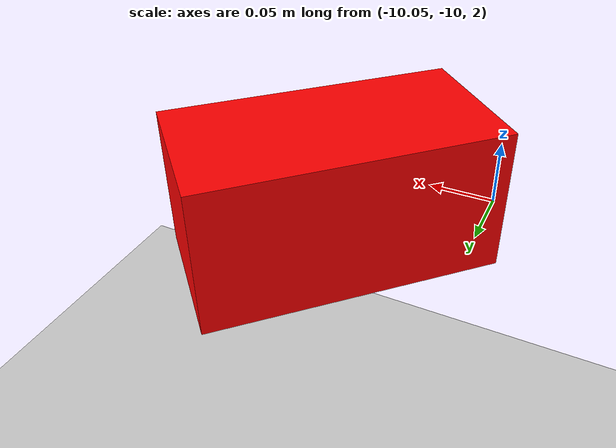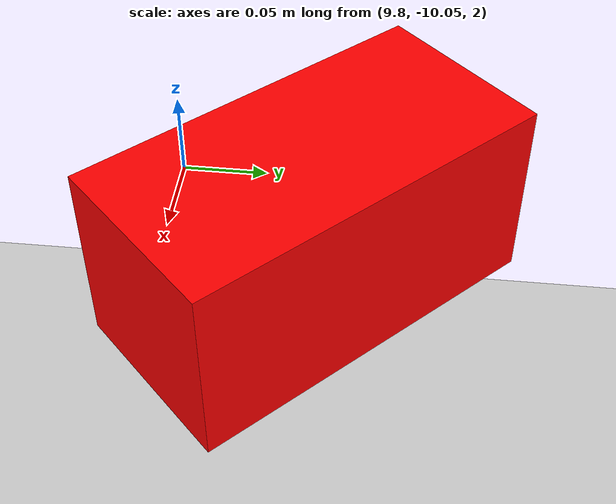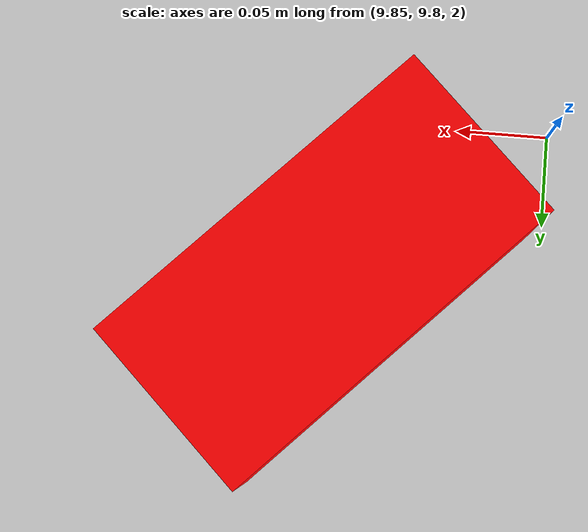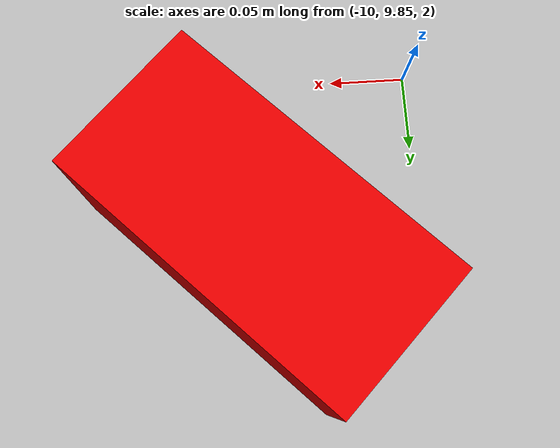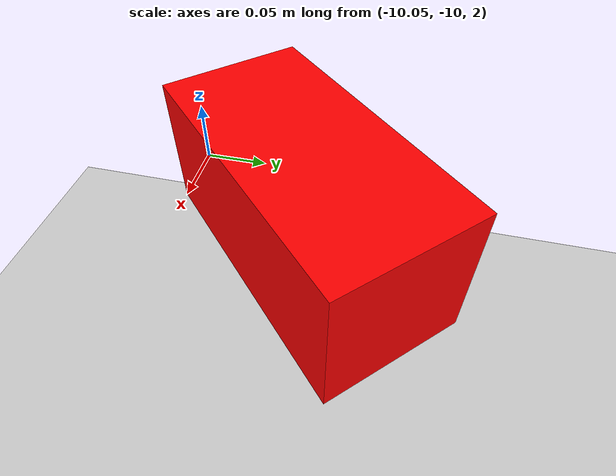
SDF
<sdf version="1.9">
 <world name="PurdueMini">
  <physics type="ode">
   <max_step_size>0.004</max_step_size>
   <real_time_factor>1.0</real_time_factor>
   <real_time_update_rate>250</real_time_update_rate>
  </physics>
  <plugin name="gz::sim::systems::Physics" filename="gz-sim-physics-system"/>
  <plugin name="gz::sim::systems::UserCommands" filename="gz-sim-user-commands-system"/>
  <plugin name="gz::sim::systems::SceneBroadcaster" filename="gz-sim-scene-broadcaster-system"/>
  <plugin name="gz::sim::systems::Contact" filename="gz-sim-contact-system"/>
  <plugin name="gz::sim::systems::Imu" filename="gz-sim-imu-system"/>
  <plugin name="gz::sim::systems::AirPressure" filename="gz-sim-air-pressure-system"/>
  <plugin name="gz::sim::systems::ApplyLinkWrench" filename="gz-sim-apply-link-wrench-system"/>
  <plugin name="gz::sim::systems::Sensors" filename="gz-sim-sensors-system">
   <render_engine>ogre2</render_engine>
  </plugin>
  <gravity>0 0 -9.8</gravity>
  <magnetic_field>6e-06 2.3e-05 -4.2e-05</magnetic_field>
  <atmosphere type="adiabatic"/>
  <scene>
   <ambient>0.4 0.4 0.4 1</ambient>
   <background>0.7 0.7 0.7 1</background>
   <shadows>true</shadows>
   <grid>true</grid>
  </scene>
  <spherical_coordinates>
   <surface_model>EARTH_WGS84</surface_model>
   <world_frame_orientation>ENU</world_frame_orientation>
   <latitude_deg>24.484043629238872</latitude_deg>
   <longitude_deg>54.36068616768677</longitude_deg>
   <elevation>10</elevation>
   <heading_deg>0</heading_deg>
  </spherical_coordinates>
  <light name="sunUTC" type="directional">
   <pose>0 0 500 0 -0 0</pose>
   <cast_shadows>false</cast_shadows>
   <intensity>2</intensity>
   <direction>0 0 0</direction>
   <diffuse>0.904 0.904 0.904 1</diffuse>
   <specular>0.271 0.271 0.271 1</specular>
   <attenuation><range>1000</range><linear>0</linear><constant>1</constant><quadratic>0</quadratic></attenuation>
   <spot><inner_angle>0</inner_angle><outer_angle>0</outer_angle><falloff>0</falloff></spot>
  </light>
  <model name="ground_plane">
   <static>true</static>
   <link name="link">
    <collision name="collision"><geometry><plane><normal>0 0 1</normal></plane></geometry></collision>
    <visual name="visual">
     <geometry><plane><normal>0 0 1</normal><size>100 100</size></plane></geometry>
     <material>
      <ambient>0.8 0.8 0.8 1</ambient>
      <diffuse>0.8 0.8 0.8 1</diffuse>
      <specular>0.8 0.8 0.8 1</specular>
     </material>
     <transparency>0.9</transparency>
    </visual>
   </link>
  </model>
  <model name="camera_0">
   <pose>10 10 2.0 0 0.0 -2.35</pose>
   <static>1</static>
   <link name="link">
    <pose>0.1 0.05 0.05 0 0 0</pose>
    <visual name="visual">
     <geometry><box><size>0.2 0.1 0.1</size></box></geometry>
     <material>
      <ambient>0.5, 0, 0, 0</ambient>
      <diffuse>1.0, 0, 0, 0</diffuse>
      <emissive>1 1 1 1</emissive>
     </material>
    </visual>
    <sensor name="boundingbox_camera0" type="boundingbox_camera">
     <topic>boxes0</topic>
     <camera>
      <box_type>2d</box_type>
      <horizontal_fov>1.047</horizontal_fov>
      <image><width>800</width><height>600</height></image>
      <clip><near>0.1</near><far>1000</far></clip>
     </camera>
     <always_on>1</always_on>
     <update_rate>30</update_rate>
     <visualize>true</visualize>
    </sensor>
   </link>
  </model>
  <model name="camera_1">
   <pose>-10 10 2.0 0 0.0 -0.78</pose>
   <static>1</static>
   <link name="link">
    <pose>0.1 0.05 0.05 0 0 0</pose>
    <inertial>
     <mass>0.1</mass>
     <inertia><ixx>0.000166667</ixx><iyy>0.000166667</iyy><izz>0.000166667</izz></inertia>
    </inertial>
    <visual name="visual">
     <geometry><box><size>0.2 0.1 0.1</size></box></geometry>
     <material>
      <ambient>0.5, 0, 0, 0</ambient>
      <diffuse>1.0, 0, 0, 0</diffuse>
      <emissive>1 1 1 1</emissive>
     </material>
    </visual>
    <sensor name="boundingbox_camera1" type="boundingbox_camera">
     <topic>boxes1</topic>
     <camera>
      <box_type>2d</box_type>
      <horizontal_fov>1.047</horizontal_fov>
      <image><width>800</width><height>600</height></image>
      <clip><near>0.1</near><far>1000</far></clip>
     </camera>
     <always_on>1</always_on>
     <update_rate>30</update_rate>
     <visualize>true</visualize>
    </sensor>
   </link>
  </model>
  <model name="camera_2">
   <pose>-10 -10 2.0 0 0.0 0.78</pose>
   <static>1</static>
   <link name="link">
    <pose>0.1 0.05 0.05 0 0 0</pose>
    <inertial>
     <mass>0.1</mass>
     <inertia><ixx>0.000166667</ixx><iyy>0.000166667</iyy><izz>0.000166667</izz></inertia>
    </inertial>
    <visual name="visual">
     <geometry><box><size>0.2 0.1 0.1</size></box></geometry>
     <material>
      <ambient>0.5, 0, 0, 0</ambient>
      <diffuse>1.0, 0, 0, 0</diffuse>
      <emissive>1 1 1 1</emissive>
     </material>
    </visual>
    <sensor name="boundingbox_camera2" type="boundingbox_camera">
     <topic>boxes2</topic>
     <camera>
      <box_type>2d</box_type>
      <horizontal_fov>1.047</horizontal_fov>
      <image><width>800</width><height>600</height></image>
      <clip><near>0.1</near><far>1000</far></clip>
     </camera>
     <always_on>1</always_on>
     <update_rate>30</update_rate>
     <visualize>true</visualize>
    </sensor>
   </link>
  </model>
  <model name="camera_3">
   <pose>10 -10 2.0 0 0.0 2.35</pose>
   <static>1</static>
   <link name="link">
    <pose>0.1 0.05 0.05 0 0 0</pose>
    <inertial>
     <mass>0.1</mass>
     <inertia><ixx>0.000166667</ixx><iyy>0.000166667</iyy><izz>0.000166667</izz></inertia>
    </inertial>
    <visual name="visual">
     <geometry><box><size>0.2 0.1 0.1</size></box></geometry>
     <material>
      <ambient>0.5, 0, 0, 0</ambient>
      <diffuse>1.0, 0, 0, 0</diffuse>
      <emissive>1 1 1 1</emissive>
     </material>
    </visual>
    <sensor name="boundingbox_camera3" type="boundingbox_camera">
     <topic>boxes3</topic>
     <camera>
      <box_type>2d</box_type>
      <horizontal_fov>1.047</horizontal_fov>
      <image><width>800</width><height>600</height></image>
      <clip><near>0.1</near><far>1000</far></clip>
     </camera>
     <always_on>1</always_on>
     <update_rate>30</update_rate>
     <visualize>true</visualize>
    </sensor>
   </link>
  </model>
 </world>
</sdf>
